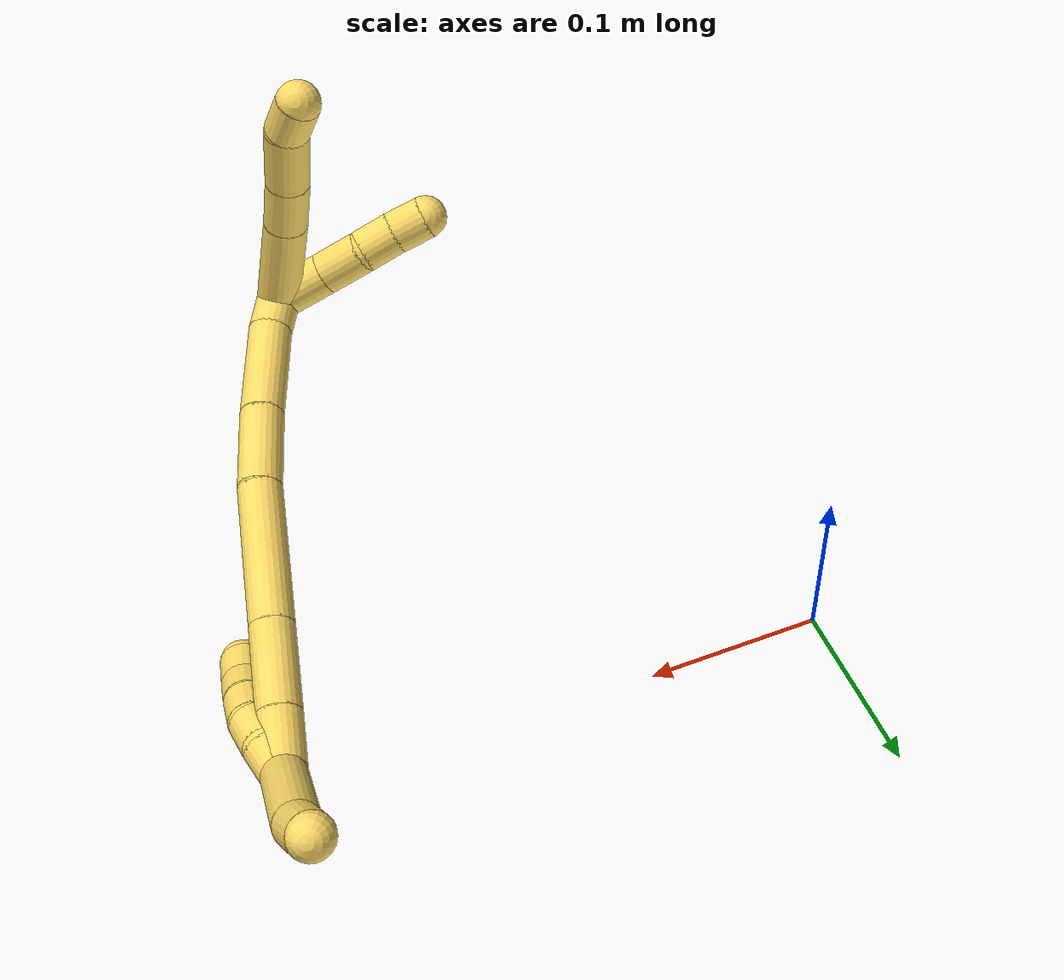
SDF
<sdf version="1.7">
 <world name="default">
  <model name="5">
   <static>0</static>
   <link name="5">
    <collision name="collision-cylinder-e_1_2_8">
     <pose>-0.022482 -0.001293 0.020133 0.064127 -0.839442 -0.028624</pose>
     <geometry><cylinder><radius>0.0125</radius><length>0.060414</length></cylinder></geometry>
     <surface>
      <friction><ode><mu>1.16</mu><mu2>1.16</mu2><slip1>0</slip1><slip2>0</slip2></ode></friction>
      <contact><ode><kp>1e+06</kp><kd>1</kd><max_vel>0</max_vel><min_depth>0.001</min_depth></ode></contact>
     </surface>
    </collision>
    <visual name="visual-cylinder-e_1_2_8">
     <pose>-0.022482 -0.001293 0.020133 0.064127 -0.839442 -0.028624</pose>
     <geometry><cylinder><radius>0.0125</radius><length>0.060414</length></cylinder></geometry>
     <material><ambient>1 0.858824 0.4 1</ambient></material>
    </visual>
    <collision name="collision-cylinder-e_2_8_9">
     <pose>-0.056154 -0.003668 0.050799 0.102376 -0.813033 -0.044104</pose>
     <geometry><cylinder><radius>0.0125</radius><length>0.03081</length></cylinder></geometry>
     <surface>
      <friction><ode><mu>1.16</mu><mu2>1.16</mu2><slip1>0</slip1><slip2>0</slip2></ode></friction>
      <contact><ode><kp>1e+06</kp><kd>1</kd><max_vel>0</max_vel><min_depth>0.001</min_depth></ode></contact>
     </surface>
    </collision>
    <visual name="visual-cylinder-e_2_8_9">
     <pose>-0.056154 -0.003668 0.050799 0.102376 -0.813033 -0.044104</pose>
     <geometry><cylinder><radius>0.0125</radius><length>0.03081</length></cylinder></geometry>
     <material><ambient>1 0.858824 0.4 1</ambient></material>
    </visual>
    <collision name="collision-cylinder-e_3_9_10">
     <pose>-0.080119 -0.006849 0.073965 0.164686 -0.784106 -0.068219</pose>
     <geometry><cylinder><radius>0.0125</radius><length>0.036178</length></cylinder></geometry>
     <surface>
      <friction><ode><mu>1.16</mu><mu2>1.16</mu2><slip1>0</slip1><slip2>0</slip2></ode></friction>
      <contact><ode><kp>1e+06</kp><kd>1</kd><max_vel>0</max_vel><min_depth>0.001</min_depth></ode></contact>
     </surface>
    </collision>
    <visual name="visual-cylinder-e_3_9_10">
     <pose>-0.080119 -0.006849 0.073965 0.164686 -0.784106 -0.068219</pose>
     <geometry><cylinder><radius>0.0125</radius><length>0.036178</length></cylinder></geometry>
     <material><ambient>1 0.858824 0.4 1</ambient></material>
    </visual>
    <collision name="collision-cylinder-e_4_10_6">
     <pose>-0.100992 -0.006884 0.094202 -0.265243 -0.799276 0.112572</pose>
     <geometry><cylinder><radius>0.0125</radius><length>0.022598</length></cylinder></geometry>
     <surface>
      <friction><ode><mu>1.16</mu><mu2>1.16</mu2><slip1>0</slip1><slip2>0</slip2></ode></friction>
      <contact><ode><kp>1e+06</kp><kd>1</kd><max_vel>0</max_vel><min_depth>0.001</min_depth></ode></contact>
     </surface>
    </collision>
    <visual name="visual-cylinder-e_4_10_6">
     <pose>-0.100992 -0.006884 0.094202 -0.265243 -0.799276 0.112572</pose>
     <geometry><cylinder><radius>0.0125</radius><length>0.022598</length></cylinder></geometry>
     <material><ambient>1 0.858824 0.4 1</ambient></material>
    </visual>
    <collision name="collision-cylinder-e_1_2_11">
     <pose>-0.011658 0.010587 0.000864 -1.48938 -0.831883 0.773288</pose>
     <geometry><cylinder><radius>0.0125</radius><length>0.031543</length></cylinder></geometry>
     <surface>
      <friction><ode><mu>1.16</mu><mu2>1.16</mu2><slip1>0</slip1><slip2>0</slip2></ode></friction>
      <contact><ode><kp>1e+06</kp><kd>1</kd><max_vel>0</max_vel><min_depth>0.001</min_depth></ode></contact>
     </surface>
    </collision>
    <visual name="visual-cylinder-e_1_2_11">
     <pose>-0.011658 0.010587 0.000864 -1.48938 -0.831883 0.773288</pose>
     <geometry><cylinder><radius>0.0125</radius><length>0.031543</length></cylinder></geometry>
     <material><ambient>1 0.858824 0.4 1</ambient></material>
    </visual>
    <collision name="collision-cylinder-e_2_11_12">
     <pose>-0.033073 0.030095 0.00453 -1.26644 -0.806577 0.607052</pose>
     <geometry><cylinder><radius>0.0125</radius><length>0.02703</length></cylinder></geometry>
     <surface>
      <friction><ode><mu>1.16</mu><mu2>1.16</mu2><slip1>0</slip1><slip2>0</slip2></ode></friction>
      <contact><ode><kp>1e+06</kp><kd>1</kd><max_vel>0</max_vel><min_depth>0.001</min_depth></ode></contact>
     </surface>
    </collision>
    <visual name="visual-cylinder-e_2_11_12">
     <pose>-0.033073 0.030095 0.00453 -1.26644 -0.806577 0.607052</pose>
     <geometry><cylinder><radius>0.0125</radius><length>0.02703</length></cylinder></geometry>
     <material><ambient>1 0.858824 0.4 1</ambient></material>
    </visual>
    <collision name="collision-cylinder-e_3_12_13">
     <pose>-0.050893 0.045968 0.006879 -1.63599 -0.858318 0.908733</pose>
     <geometry><cylinder><radius>0.0125</radius><length>0.021311</length></cylinder></geometry>
     <surface>
      <friction><ode><mu>1.16</mu><mu2>1.16</mu2><slip1>0</slip1><slip2>0</slip2></ode></friction>
      <contact><ode><kp>1e+06</kp><kd>1</kd><max_vel>0</max_vel><min_depth>0.001</min_depth></ode></contact>
     </surface>
    </collision>
    <visual name="visual-cylinder-e_3_12_13">
     <pose>-0.050893 0.045968 0.006879 -1.63599 -0.858318 0.908733</pose>
     <geometry><cylinder><radius>0.0125</radius><length>0.021311</length></cylinder></geometry>
     <material><ambient>1 0.858824 0.4 1</ambient></material>
    </visual>
    <collision name="collision-cylinder-e_4_13_5">
     <pose>-0.066159 0.059935 0.006671 -1.53578 -0.798197 0.773427</pose>
     <geometry><cylinder><radius>0.0125</radius><length>0.020117</length></cylinder></geometry>
     <surface>
      <friction><ode><mu>1.16</mu><mu2>1.16</mu2><slip1>0</slip1><slip2>0</slip2></ode></friction>
      <contact><ode><kp>1e+06</kp><kd>1</kd><max_vel>0</max_vel><min_depth>0.001</min_depth></ode></contact>
     </surface>
    </collision>
    <visual name="visual-cylinder-e_4_13_5">
     <pose>-0.066159 0.059935 0.006671 -1.53578 -0.798197 0.773427</pose>
     <geometry><cylinder><radius>0.0125</radius><length>0.020117</length></cylinder></geometry>
     <material><ambient>1 0.858824 0.4 1</ambient></material>
    </visual>
    <collision name="collision-cylinder-e_1_2_14">
     <pose>0.009128 0.001686 0.0062 -0.265452 0.957437 -0.138359</pose>
     <geometry><cylinder><radius>0.0125</radius><length>0.022324</length></cylinder></geometry>
     <surface>
      <friction><ode><mu>1.16</mu><mu2>1.16</mu2><slip1>0</slip1><slip2>0</slip2></ode></friction>
      <contact><ode><kp>1e+06</kp><kd>1</kd><max_vel>0</max_vel><min_depth>0.001</min_depth></ode></contact>
     </surface>
    </collision>
    <visual name="visual-cylinder-e_1_2_14">
     <pose>0.009128 0.001686 0.0062 -0.265452 0.957437 -0.138359</pose>
     <geometry><cylinder><radius>0.0125</radius><length>0.022324</length></cylinder></geometry>
     <material><ambient>1 0.858824 0.4 1</ambient></material>
    </visual>
    <collision name="collision-cylinder-e_2_14_15">
     <pose>0.039331 0.011919 0.031884 -0.413407 0.780659 -0.17213</pose>
     <geometry><cylinder><radius>0.0125</radius><length>0.059895</length></cylinder></geometry>
     <surface>
      <friction><ode><mu>1.16</mu><mu2>1.16</mu2><slip1>0</slip1><slip2>0</slip2></ode></friction>
      <contact><ode><kp>1e+06</kp><kd>1</kd><max_vel>0</max_vel><min_depth>0.001</min_depth></ode></contact>
     </surface>
    </collision>
    <visual name="visual-cylinder-e_2_14_15">
     <pose>0.039331 0.011919 0.031884 -0.413407 0.780659 -0.17213</pose>
     <geometry><cylinder><radius>0.0125</radius><length>0.059895</length></cylinder></geometry>
     <material><ambient>1 0.858824 0.4 1</ambient></material>
    </visual>
    <collision name="collision-cylinder-e_3_15_16">
     <pose>0.077641 0.028785 0.066709 -0.496884 0.779165 -0.207559</pose>
     <geometry><cylinder><radius>0.0125</radius><length>0.049054</length></cylinder></geometry>
     <surface>
      <friction><ode><mu>1.16</mu><mu2>1.16</mu2><slip1>0</slip1><slip2>0</slip2></ode></friction>
      <contact><ode><kp>1e+06</kp><kd>1</kd><max_vel>0</max_vel><min_depth>0.001</min_depth></ode></contact>
     </surface>
    </collision>
    <visual name="visual-cylinder-e_3_15_16">
     <pose>0.077641 0.028785 0.066709 -0.496884 0.779165 -0.207559</pose>
     <geometry><cylinder><radius>0.0125</radius><length>0.049054</length></cylinder></geometry>
     <material><ambient>1 0.858824 0.4 1</ambient></material>
    </visual>
    <collision name="collision-cylinder-e_4_16_17">
     <pose>0.124582 0.055268 0.105724 -0.654458 0.783156 -0.278489</pose>
     <geometry><cylinder><radius>0.0125</radius><length>0.084212</length></cylinder></geometry>
     <surface>
      <friction><ode><mu>1.16</mu><mu2>1.16</mu2><slip1>0</slip1><slip2>0</slip2></ode></friction>
      <contact><ode><kp>1e+06</kp><kd>1</kd><max_vel>0</max_vel><min_depth>0.001</min_depth></ode></contact>
     </surface>
    </collision>
    <visual name="visual-cylinder-e_4_16_17">
     <pose>0.124582 0.055268 0.105724 -0.654458 0.783156 -0.278489</pose>
     <geometry><cylinder><radius>0.0125</radius><length>0.084212</length></cylinder></geometry>
     <material><ambient>1 0.858824 0.4 1</ambient></material>
    </visual>
    <collision name="collision-cylinder-e_5_17_18">
     <pose>0.171654 0.084252 0.144393 -0.625052 0.754019 -0.254492</pose>
     <geometry><cylinder><radius>0.0125</radius><length>0.050733</length></cylinder></geometry>
     <surface>
      <friction><ode><mu>1.16</mu><mu2>1.16</mu2><slip1>0</slip1><slip2>0</slip2></ode></friction>
      <contact><ode><kp>1e+06</kp><kd>1</kd><max_vel>0</max_vel><min_depth>0.001</min_depth></ode></contact>
     </surface>
    </collision>
    <visual name="visual-cylinder-e_5_17_18">
     <pose>0.171654 0.084252 0.144393 -0.625052 0.754019 -0.254492</pose>
     <geometry><cylinder><radius>0.0125</radius><length>0.050733</length></cylinder></geometry>
     <material><ambient>1 0.858824 0.4 1</ambient></material>
    </visual>
    <collision name="collision-cylinder-e_6_18_1">
     <pose>0.200712 0.102225 0.169257 -0.627148 0.764603 -0.259307</pose>
     <geometry><cylinder><radius>0.0125</radius><length>0.033782</length></cylinder></geometry>
     <surface>
      <friction><ode><mu>1.16</mu><mu2>1.16</mu2><slip1>0</slip1><slip2>0</slip2></ode></friction>
      <contact><ode><kp>1e+06</kp><kd>1</kd><max_vel>0</max_vel><min_depth>0.001</min_depth></ode></contact>
     </surface>
    </collision>
    <visual name="visual-cylinder-e_6_18_1">
     <pose>0.200712 0.102225 0.169257 -0.627148 0.764603 -0.259307</pose>
     <geometry><cylinder><radius>0.0125</radius><length>0.033782</length></cylinder></geometry>
     <material><ambient>1 0.858824 0.4 1</ambient></material>
    </visual>
    <collision name="collision-cylinder-e_1_1_19">
     <pose>0.208657 0.10189 0.173661 2.20141 -0.384138 -0.731089</pose>
     <geometry><cylinder><radius>0.0125</radius><length>0.02</length></cylinder></geometry>
     <surface>
      <friction><ode><mu>1.16</mu><mu2>1.16</mu2><slip1>0</slip1><slip2>0</slip2></ode></friction>
      <contact><ode><kp>1e+06</kp><kd>1</kd><max_vel>0</max_vel><min_depth>0.001</min_depth></ode></contact>
     </surface>
    </collision>
    <visual name="visual-cylinder-e_1_1_19">
     <pose>0.208657 0.10189 0.173661 2.20141 -0.384138 -0.731089</pose>
     <geometry><cylinder><radius>0.0125</radius><length>0.02</length></cylinder></geometry>
     <material><ambient>1 0.858824 0.4 1</ambient></material>
    </visual>
    <collision name="collision-cylinder-e_2_19_20">
     <pose>0.202414 0.088306 0.16067 2.4607 -0.252215 -0.687383</pose>
     <geometry><cylinder><radius>0.0125</radius><length>0.02</length></cylinder></geometry>
     <surface>
      <friction><ode><mu>1.16</mu><mu2>1.16</mu2><slip1>0</slip1><slip2>0</slip2></ode></friction>
      <contact><ode><kp>1e+06</kp><kd>1</kd><max_vel>0</max_vel><min_depth>0.001</min_depth></ode></contact>
     </surface>
    </collision>
    <visual name="visual-cylinder-e_2_19_20">
     <pose>0.202414 0.088306 0.16067 2.4607 -0.252215 -0.687383</pose>
     <geometry><cylinder><radius>0.0125</radius><length>0.02</length></cylinder></geometry>
     <material><ambient>1 0.858824 0.4 1</ambient></material>
    </visual>
    <collision name="collision-cylinder-e_3_20_21">
     <pose>0.197575 0.078235 0.144274 2.72029 -0.236514 -1.01434</pose>
     <geometry><cylinder><radius>0.0125</radius><length>0.02</length></cylinder></geometry>
     <surface>
      <friction><ode><mu>1.16</mu><mu2>1.16</mu2><slip1>0</slip1><slip2>0</slip2></ode></friction>
      <contact><ode><kp>1e+06</kp><kd>1</kd><max_vel>0</max_vel><min_depth>0.001</min_depth></ode></contact>
     </surface>
    </collision>
    <visual name="visual-cylinder-e_3_20_21">
     <pose>0.197575 0.078235 0.144274 2.72029 -0.236514 -1.01434</pose>
     <geometry><cylinder><radius>0.0125</radius><length>0.02</length></cylinder></geometry>
     <material><ambient>1 0.858824 0.4 1</ambient></material>
    </visual>
    <collision name="collision-cylinder-e_4_21_22">
     <pose>0.193608 0.071115 0.12605 2.81726 -0.163118 -0.926688</pose>
     <geometry><cylinder><radius>0.0125</radius><length>0.02</length></cylinder></geometry>
     <surface>
      <friction><ode><mu>1.16</mu><mu2>1.16</mu2><slip1>0</slip1><slip2>0</slip2></ode></friction>
      <contact><ode><kp>1e+06</kp><kd>1</kd><max_vel>0</max_vel><min_depth>0.001</min_depth></ode></contact>
     </surface>
    </collision>
    <visual name="visual-cylinder-e_4_21_22">
     <pose>0.193608 0.071115 0.12605 2.81726 -0.163118 -0.926688</pose>
     <geometry><cylinder><radius>0.0125</radius><length>0.02</length></cylinder></geometry>
     <material><ambient>1 0.858824 0.4 1</ambient></material>
    </visual>
    <collision name="collision-cylinder-e_5_22_4">
     <pose>0.188895 0.064489 0.107846 2.76681 -0.314101 -1.3916</pose>
     <geometry><cylinder><radius>0.0125</radius><length>0.02</length></cylinder></geometry>
     <surface>
      <friction><ode><mu>1.16</mu><mu2>1.16</mu2><slip1>0</slip1><slip2>0</slip2></ode></friction>
      <contact><ode><kp>1e+06</kp><kd>1</kd><max_vel>0</max_vel><min_depth>0.001</min_depth></ode></contact>
     </surface>
    </collision>
    <visual name="visual-cylinder-e_5_22_4">
     <pose>0.188895 0.064489 0.107846 2.76681 -0.314101 -1.3916</pose>
     <geometry><cylinder><radius>0.0125</radius><length>0.02</length></cylinder></geometry>
     <material><ambient>1 0.858824 0.4 1</ambient></material>
    </visual>
    <collision name="collision-cylinder-e_1_1_23">
     <pose>0.212233 0.119524 0.213768 -0.284918 -0.004747 0.000681</pose>
     <geometry><cylinder><radius>0.0125</radius><length>0.072193</length></cylinder></geometry>
     <surface>
      <friction><ode><mu>1.16</mu><mu2>1.16</mu2><slip1>0</slip1><slip2>0</slip2></ode></friction>
      <contact><ode><kp>1e+06</kp><kd>1</kd><max_vel>0</max_vel><min_depth>0.001</min_depth></ode></contact>
     </surface>
    </collision>
    <visual name="visual-cylinder-e_1_1_23">
     <pose>0.212233 0.119524 0.213768 -0.284918 -0.004747 0.000681</pose>
     <geometry><cylinder><radius>0.0125</radius><length>0.072193</length></cylinder></geometry>
     <material><ambient>1 0.858824 0.4 1</ambient></material>
    </visual>
    <collision name="collision-cylinder-e_2_23_3">
     <pose>0.209258 0.134441 0.261164 -0.357989 -0.203044 0.03686</pose>
     <geometry><cylinder><radius>0.0125</radius><length>0.027807</length></cylinder></geometry>
     <surface>
      <friction><ode><mu>1.16</mu><mu2>1.16</mu2><slip1>0</slip1><slip2>0</slip2></ode></friction>
      <contact><ode><kp>1e+06</kp><kd>1</kd><max_vel>0</max_vel><min_depth>0.001</min_depth></ode></contact>
     </surface>
    </collision>
    <visual name="visual-cylinder-e_2_23_3">
     <pose>0.209258 0.134441 0.261164 -0.357989 -0.203044 0.03686</pose>
     <geometry><cylinder><radius>0.0125</radius><length>0.027807</length></cylinder></geometry>
     <material><ambient>1 0.858824 0.4 1</ambient></material>
    </visual>
    <collision name="collision-sphere-3">
     <pose>0.206455 0.139213 0.273918 0 -0 0</pose>
     <geometry><sphere><radius>0.0125</radius></sphere></geometry>
     <surface>
      <friction><ode><mu>1.16</mu><mu2>1.16</mu2><slip1>0</slip1><slip2>0</slip2></ode></friction>
      <contact><ode><kp>1e+06</kp><kd>1</kd><max_vel>0</max_vel><min_depth>0.001</min_depth></ode></contact>
     </surface>
    </collision>
    <visual name="visual-sphere-3">
     <pose>0.206455 0.139213 0.273918 0 -0 0</pose>
     <geometry><sphere><radius>0.0125</radius></sphere></geometry>
     <material><ambient>1 0.858824 0.4 1</ambient></material>
    </visual>
    <collision name="collision-sphere-23">
     <pose>0.212062 0.12967 0.248409 0 -0 0</pose>
     <geometry><sphere><radius>0.0125</radius></sphere></geometry>
     <surface>
      <friction><ode><mu>1.16</mu><mu2>1.16</mu2><slip1>0</slip1><slip2>0</slip2></ode></friction>
      <contact><ode><kp>1e+06</kp><kd>1</kd><max_vel>0</max_vel><min_depth>0.001</min_depth></ode></contact>
     </surface>
    </collision>
    <visual name="visual-sphere-23">
     <pose>0.212062 0.12967 0.248409 0 -0 0</pose>
     <geometry><sphere><radius>0.0125</radius></sphere></geometry>
     <material><ambient>1 0.858824 0.4 1</ambient></material>
    </visual>
    <collision name="collision-sphere-4">
     <pose>0.185805 0.061007 0.098996 0 -0 0</pose>
     <geometry><sphere><radius>0.0125</radius></sphere></geometry>
     <surface>
      <friction><ode><mu>1.16</mu><mu2>1.16</mu2><slip1>0</slip1><slip2>0</slip2></ode></friction>
      <contact><ode><kp>1e+06</kp><kd>1</kd><max_vel>0</max_vel><min_depth>0.001</min_depth></ode></contact>
     </surface>
    </collision>
    <visual name="visual-sphere-4">
     <pose>0.185805 0.061007 0.098996 0 -0 0</pose>
     <geometry><sphere><radius>0.0125</radius></sphere></geometry>
     <material><ambient>1 0.858824 0.4 1</ambient></material>
    </visual>
    <collision name="collision-sphere-22">
     <pose>0.191984 0.06797 0.116697 0 -0 0</pose>
     <geometry><sphere><radius>0.0125</radius></sphere></geometry>
     <surface>
      <friction><ode><mu>1.16</mu><mu2>1.16</mu2><slip1>0</slip1><slip2>0</slip2></ode></friction>
      <contact><ode><kp>1e+06</kp><kd>1</kd><max_vel>0</max_vel><min_depth>0.001</min_depth></ode></contact>
     </surface>
    </collision>
    <visual name="visual-sphere-22">
     <pose>0.191984 0.06797 0.116697 0 -0 0</pose>
     <geometry><sphere><radius>0.0125</radius></sphere></geometry>
     <material><ambient>1 0.858824 0.4 1</ambient></material>
    </visual>
    <collision name="collision-sphere-21">
     <pose>0.195232 0.074259 0.135402 0 -0 0</pose>
     <geometry><sphere><radius>0.0125</radius></sphere></geometry>
     <surface>
      <friction><ode><mu>1.16</mu><mu2>1.16</mu2><slip1>0</slip1><slip2>0</slip2></ode></friction>
      <contact><ode><kp>1e+06</kp><kd>1</kd><max_vel>0</max_vel><min_depth>0.001</min_depth></ode></contact>
     </surface>
    </collision>
    <visual name="visual-sphere-21">
     <pose>0.195232 0.074259 0.135402 0 -0 0</pose>
     <geometry><sphere><radius>0.0125</radius></sphere></geometry>
     <material><ambient>1 0.858824 0.4 1</ambient></material>
    </visual>
    <collision name="collision-sphere-20">
     <pose>0.199918 0.082211 0.153145 0 -0 0</pose>
     <geometry><sphere><radius>0.0125</radius></sphere></geometry>
     <surface>
      <friction><ode><mu>1.16</mu><mu2>1.16</mu2><slip1>0</slip1><slip2>0</slip2></ode></friction>
      <contact><ode><kp>1e+06</kp><kd>1</kd><max_vel>0</max_vel><min_depth>0.001</min_depth></ode></contact>
     </surface>
    </collision>
    <visual name="visual-sphere-20">
     <pose>0.199918 0.082211 0.153145 0 -0 0</pose>
     <geometry><sphere><radius>0.0125</radius></sphere></geometry>
     <material><ambient>1 0.858824 0.4 1</ambient></material>
    </visual>
    <collision name="collision-sphere-11">
     <pose>-0.023317 0.021173 0.001728 0 -0 0</pose>
     <geometry><sphere><radius>0.0125</radius></sphere></geometry>
     <surface>
      <friction><ode><mu>1.16</mu><mu2>1.16</mu2><slip1>0</slip1><slip2>0</slip2></ode></friction>
      <contact><ode><kp>1e+06</kp><kd>1</kd><max_vel>0</max_vel><min_depth>0.001</min_depth></ode></contact>
     </surface>
    </collision>
    <visual name="visual-sphere-11">
     <pose>-0.023317 0.021173 0.001728 0 -0 0</pose>
     <geometry><sphere><radius>0.0125</radius></sphere></geometry>
     <material><ambient>1 0.858824 0.4 1</ambient></material>
    </visual>
    <collision name="collision-sphere-6">
     <pose>-0.109092 -0.004819 0.101804 0 -0 0</pose>
     <geometry><sphere><radius>0.0125</radius></sphere></geometry>
     <surface>
      <friction><ode><mu>1.16</mu><mu2>1.16</mu2><slip1>0</slip1><slip2>0</slip2></ode></friction>
      <contact><ode><kp>1e+06</kp><kd>1</kd><max_vel>0</max_vel><min_depth>0.001</min_depth></ode></contact>
     </surface>
    </collision>
    <visual name="visual-sphere-6">
     <pose>-0.109092 -0.004819 0.101804 0 -0 0</pose>
     <geometry><sphere><radius>0.0125</radius></sphere></geometry>
     <material><ambient>1 0.858824 0.4 1</ambient></material>
    </visual>
    <collision name="collision-sphere-10">
     <pose>-0.092893 -0.008949 0.086599 0 -0 0</pose>
     <geometry><sphere><radius>0.0125</radius></sphere></geometry>
     <surface>
      <friction><ode><mu>1.16</mu><mu2>1.16</mu2><slip1>0</slip1><slip2>0</slip2></ode></friction>
      <contact><ode><kp>1e+06</kp><kd>1</kd><max_vel>0</max_vel><min_depth>0.001</min_depth></ode></contact>
     </surface>
    </collision>
    <visual name="visual-sphere-10">
     <pose>-0.092893 -0.008949 0.086599 0 -0 0</pose>
     <geometry><sphere><radius>0.0125</radius></sphere></geometry>
     <material><ambient>1 0.858824 0.4 1</ambient></material>
    </visual>
    <collision name="collision-sphere-9">
     <pose>-0.067344 -0.00475 0.061331 0 -0 0</pose>
     <geometry><sphere><radius>0.0125</radius></sphere></geometry>
     <surface>
      <friction><ode><mu>1.16</mu><mu2>1.16</mu2><slip1>0</slip1><slip2>0</slip2></ode></friction>
      <contact><ode><kp>1e+06</kp><kd>1</kd><max_vel>0</max_vel><min_depth>0.001</min_depth></ode></contact>
     </surface>
    </collision>
    <visual name="visual-sphere-9">
     <pose>-0.067344 -0.00475 0.061331 0 -0 0</pose>
     <geometry><sphere><radius>0.0125</radius></sphere></geometry>
     <material><ambient>1 0.858824 0.4 1</ambient></material>
    </visual>
    <collision name="collision-sphere-2">
     <geometry><sphere><radius>0.0125</radius></sphere></geometry>
     <surface>
      <friction><ode><mu>1.16</mu><mu2>1.16</mu2><slip1>0</slip1><slip2>0</slip2></ode></friction>
      <contact><ode><kp>1e+06</kp><kd>1</kd><max_vel>0</max_vel><min_depth>0.001</min_depth></ode></contact>
     </surface>
    </collision>
    <visual name="visual-sphere-2">
     <geometry><sphere><radius>0.0125</radius></sphere></geometry>
     <material><ambient>1 0.858824 0.4 1</ambient></material>
    </visual>
    <collision name="collision-sphere-19">
     <pose>0.204909 0.094402 0.168194 0 -0 0</pose>
     <geometry><sphere><radius>0.0125</radius></sphere></geometry>
     <surface>
      <friction><ode><mu>1.16</mu><mu2>1.16</mu2><slip1>0</slip1><slip2>0</slip2></ode></friction>
      <contact><ode><kp>1e+06</kp><kd>1</kd><max_vel>0</max_vel><min_depth>0.001</min_depth></ode></contact>
     </surface>
    </collision>
    <visual name="visual-sphere-19">
     <pose>0.204909 0.094402 0.168194 0 -0 0</pose>
     <geometry><sphere><radius>0.0125</radius></sphere></geometry>
     <material><ambient>1 0.858824 0.4 1</ambient></material>
    </visual>
    <collision name="collision-sphere-8">
     <pose>-0.044965 -0.002586 0.040266 0 -0 0</pose>
     <geometry><sphere><radius>0.0125</radius></sphere></geometry>
     <surface>
      <friction><ode><mu>1.16</mu><mu2>1.16</mu2><slip1>0</slip1><slip2>0</slip2></ode></friction>
      <contact><ode><kp>1e+06</kp><kd>1</kd><max_vel>0</max_vel><min_depth>0.001</min_depth></ode></contact>
     </surface>
    </collision>
    <visual name="visual-sphere-8">
     <pose>-0.044965 -0.002586 0.040266 0 -0 0</pose>
     <geometry><sphere><radius>0.0125</radius></sphere></geometry>
     <material><ambient>1 0.858824 0.4 1</ambient></material>
    </visual>
    <collision name="collision-sphere-12">
     <pose>-0.04283 0.039018 0.007333 0 -0 0</pose>
     <geometry><sphere><radius>0.0125</radius></sphere></geometry>
     <surface>
      <friction><ode><mu>1.16</mu><mu2>1.16</mu2><slip1>0</slip1><slip2>0</slip2></ode></friction>
      <contact><ode><kp>1e+06</kp><kd>1</kd><max_vel>0</max_vel><min_depth>0.001</min_depth></ode></contact>
     </surface>
    </collision>
    <visual name="visual-sphere-12">
     <pose>-0.04283 0.039018 0.007333 0 -0 0</pose>
     <geometry><sphere><radius>0.0125</radius></sphere></geometry>
     <material><ambient>1 0.858824 0.4 1</ambient></material>
    </visual>
    <collision name="collision-sphere-13">
     <pose>-0.058957 0.052919 0.006425 0 -0 0</pose>
     <geometry><sphere><radius>0.0125</radius></sphere></geometry>
     <surface>
      <friction><ode><mu>1.16</mu><mu2>1.16</mu2><slip1>0</slip1><slip2>0</slip2></ode></friction>
      <contact><ode><kp>1e+06</kp><kd>1</kd><max_vel>0</max_vel><min_depth>0.001</min_depth></ode></contact>
     </surface>
    </collision>
    <visual name="visual-sphere-13">
     <pose>-0.058957 0.052919 0.006425 0 -0 0</pose>
     <geometry><sphere><radius>0.0125</radius></sphere></geometry>
     <material><ambient>1 0.858824 0.4 1</ambient></material>
    </visual>
    <collision name="collision-sphere-5">
     <pose>-0.073362 0.066952 0.006917 0 -0 0</pose>
     <geometry><sphere><radius>0.0125</radius></sphere></geometry>
     <surface>
      <friction><ode><mu>1.16</mu><mu2>1.16</mu2><slip1>0</slip1><slip2>0</slip2></ode></friction>
      <contact><ode><kp>1e+06</kp><kd>1</kd><max_vel>0</max_vel><min_depth>0.001</min_depth></ode></contact>
     </surface>
    </collision>
    <visual name="visual-sphere-5">
     <pose>-0.073362 0.066952 0.006917 0 -0 0</pose>
     <geometry><sphere><radius>0.0125</radius></sphere></geometry>
     <material><ambient>1 0.858824 0.4 1</ambient></material>
    </visual>
    <collision name="collision-sphere-14">
     <pose>0.018255 0.003371 0.0124 0 -0 0</pose>
     <geometry><sphere><radius>0.0125</radius></sphere></geometry>
     <surface>
      <friction><ode><mu>1.16</mu><mu2>1.16</mu2><slip1>0</slip1><slip2>0</slip2></ode></friction>
      <contact><ode><kp>1e+06</kp><kd>1</kd><max_vel>0</max_vel><min_depth>0.001</min_depth></ode></contact>
     </surface>
    </collision>
    <visual name="visual-sphere-14">
     <pose>0.018255 0.003371 0.0124 0 -0 0</pose>
     <geometry><sphere><radius>0.0125</radius></sphere></geometry>
     <material><ambient>1 0.858824 0.4 1</ambient></material>
    </visual>
    <collision name="collision-sphere-15">
     <pose>0.060406 0.020466 0.051368 0 -0 0</pose>
     <geometry><sphere><radius>0.0125</radius></sphere></geometry>
     <surface>
      <friction><ode><mu>1.16</mu><mu2>1.16</mu2><slip1>0</slip1><slip2>0</slip2></ode></friction>
      <contact><ode><kp>1e+06</kp><kd>1</kd><max_vel>0</max_vel><min_depth>0.001</min_depth></ode></contact>
     </surface>
    </collision>
    <visual name="visual-sphere-15">
     <pose>0.060406 0.020466 0.051368 0 -0 0</pose>
     <geometry><sphere><radius>0.0125</radius></sphere></geometry>
     <material><ambient>1 0.858824 0.4 1</ambient></material>
    </visual>
    <collision name="collision-sphere-16">
     <pose>0.094875 0.037103 0.082049 0 -0 0</pose>
     <geometry><sphere><radius>0.0125</radius></sphere></geometry>
     <surface>
      <friction><ode><mu>1.16</mu><mu2>1.16</mu2><slip1>0</slip1><slip2>0</slip2></ode></friction>
      <contact><ode><kp>1e+06</kp><kd>1</kd><max_vel>0</max_vel><min_depth>0.001</min_depth></ode></contact>
     </surface>
    </collision>
    <visual name="visual-sphere-16">
     <pose>0.094875 0.037103 0.082049 0 -0 0</pose>
     <geometry><sphere><radius>0.0125</radius></sphere></geometry>
     <material><ambient>1 0.858824 0.4 1</ambient></material>
    </visual>
    <collision name="collision-sphere-17">
     <pose>0.154288 0.073432 0.129398 0 -0 0</pose>
     <geometry><sphere><radius>0.0125</radius></sphere></geometry>
     <surface>
      <friction><ode><mu>1.16</mu><mu2>1.16</mu2><slip1>0</slip1><slip2>0</slip2></ode></friction>
      <contact><ode><kp>1e+06</kp><kd>1</kd><max_vel>0</max_vel><min_depth>0.001</min_depth></ode></contact>
     </surface>
    </collision>
    <visual name="visual-sphere-17">
     <pose>0.154288 0.073432 0.129398 0 -0 0</pose>
     <geometry><sphere><radius>0.0125</radius></sphere></geometry>
     <material><ambient>1 0.858824 0.4 1</ambient></material>
    </visual>
    <collision name="collision-sphere-18">
     <pose>0.189019 0.095071 0.159387 0 -0 0</pose>
     <geometry><sphere><radius>0.0125</radius></sphere></geometry>
     <surface>
      <friction><ode><mu>1.16</mu><mu2>1.16</mu2><slip1>0</slip1><slip2>0</slip2></ode></friction>
      <contact><ode><kp>1e+06</kp><kd>1</kd><max_vel>0</max_vel><min_depth>0.001</min_depth></ode></contact>
     </surface>
    </collision>
    <visual name="visual-sphere-18">
     <pose>0.189019 0.095071 0.159387 0 -0 0</pose>
     <geometry><sphere><radius>0.0125</radius></sphere></geometry>
     <material><ambient>1 0.858824 0.4 1</ambient></material>
    </visual>
    <collision name="collision-sphere-1">
     <pose>0.212405 0.109378 0.179127 0 -0 0</pose>
     <geometry><sphere><radius>0.0125</radius></sphere></geometry>
     <surface>
      <friction><ode><mu>1.16</mu><mu2>1.16</mu2><slip1>0</slip1><slip2>0</slip2></ode></friction>
      <contact><ode><kp>1e+06</kp><kd>1</kd><max_vel>0</max_vel><min_depth>0.001</min_depth></ode></contact>
     </surface>
    </collision>
    <visual name="visual-sphere-1">
     <pose>0.212405 0.109378 0.179127 0 -0 0</pose>
     <geometry><sphere><radius>0.0125</radius></sphere></geometry>
     <material><ambient>1 0.858824 0.4 1</ambient></material>
    </visual>
    <inertial>
     <pose>0.081821 0.050309 0.096304 0 -0 0</pose>
     <mass>0.75</mass>
     <inertia>
      <ixx>0.000119</ixx>
      <ixy>0</ixy>
      <ixz>0</ixz>
      <iyy>0.000157</iyy>
      <iyz>0</iyz>
      <izz>-6.9e-05</izz>
     </inertia>
    </inertial>
   </link>
   <pose>0.221936 -0.266304 0.100367 -0.299591 0.788151 0.688815</pose>
  </model>
 </world>
</sdf>
